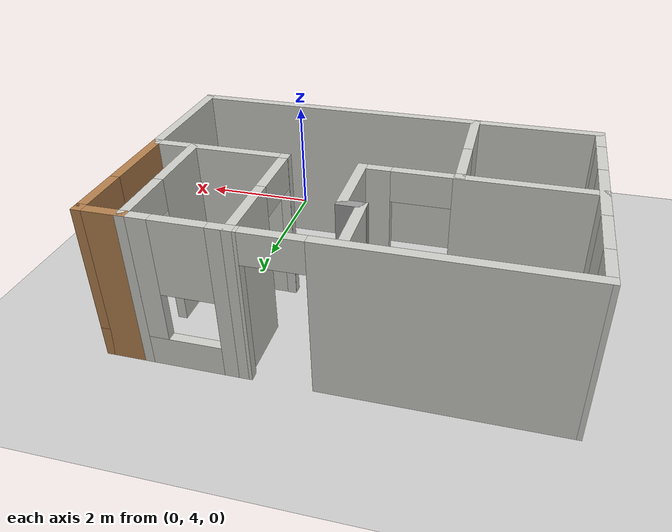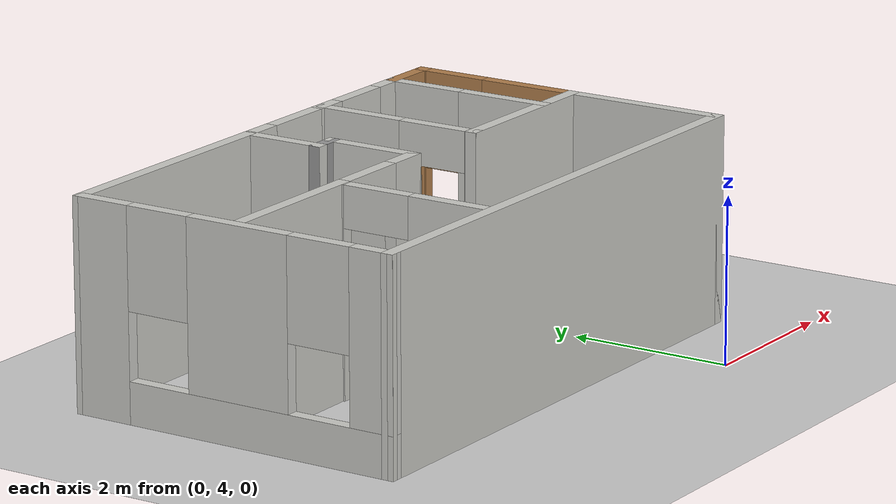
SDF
<?xml version="1.0" ?>
<sdf version="1.4">
  <world name="default">
    <include>
      <uri>model://ground_plane</uri>
    </include>
    <include>
      <uri>model://sun</uri>
    </include>
    <include>
      <uri>model://turtlebot_house</uri>
      <pose>-2.0 7.0 0 0 0 0</pose>
    </include>
  </world>
</sdf>

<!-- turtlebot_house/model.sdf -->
<sdf version='1.6'>
  <model name='turtlebot_house'>
    <pose frame=''>-0.010638 -0.005 0 0 -0 0</pose>
    <link name='Wall_0'>
      <collision name='Wall_0_Collision'>
        <geometry>
          <box>
            <size>6.875 0.15 2.5</size>
          </box>
        </geometry>
        <pose frame=''>0 0 1.25 0 -0 0</pose>
      </collision>
      <visual name='Wall_0_Visual'>
        <pose frame=''>0 0 1.25 0 -0 0</pose>
        <geometry>
          <box>
            <size>6.875 0.15 2.5</size>
          </box>
        </geometry>
        <material>
          <script>
            <uri>file://media/materials/scripts/gazebo.material</uri>
            <name>Gazebo/CeilingTiled</name>
          </script>
          <ambient>0.760784 0.662745 0.627451 1</ambient>
        </material>
        <meta>
          <layer>0</layer>
        </meta>
      </visual>
      <pose frame=''>0.000138 -2.03 0 0 -0 0</pose>
    </link>
    <link name='Wall_10'>
      <pose frame=''>1.99264 2.03 0 0 -0 0</pose>
      <visual name='Wall_10_Visual_0'>
        <pose frame=''>-0.630226 0 1.25 0 -0 0</pose>
        <geometry>
          <box>
            <size>0.369548 0.15 2.5</size>
          </box>
        </geometry>
        <material>
          <script>
            <uri>file://media/materials/scripts/gazebo.material</uri>
            <name>Gazebo/CeilingTiled</name>
          </script>
          <ambient>0.760784 0.662745 0.627451 1</ambient>
        </material>
        <meta>
          <layer>0</layer>
        </meta>
      </visual>
      <collision name='Wall_10_Collision_0'>
        <geometry>
          <box>
            <size>0.369548 0.15 2.5</size>
          </box>
        </geometry>
        <pose frame=''>-0.630226 0 1.25 0 -0 0</pose>
      </collision>
      <visual name='Wall_10_Visual_1'>
        <pose frame=''>0.184774 0 0.25 0 -0 0</pose>
        <geometry>
          <box>
            <size>1.26045 0.15 0.5</size>
          </box>
        </geometry>
        <material>
          <script>
            <uri>file://media/materials/scripts/gazebo.material</uri>
            <name>Gazebo/CeilingTiled</name>
          </script>
          <ambient>0.760784 0.662745 0.627451 1</ambient>
        </material>
        <meta>
          <layer>0</layer>
        </meta>
      </visual>
      <collision name='Wall_10_Collision_1'>
        <geometry>
          <box>
            <size>1.26045 0.15 0.5</size>
          </box>
        </geometry>
        <pose frame=''>0.184774 0 0.25 0 -0 0</pose>
      </collision>
      <visual name='Wall_10_Visual_2'>
        <pose frame=''>0.584774 0 1.5 0 -0 0</pose>
        <geometry>
          <box>
            <size>0.460452 0.15 2</size>
          </box>
        </geometry>
        <material>
          <script>
            <uri>file://media/materials/scripts/gazebo.material</uri>
            <name>Gazebo/CeilingTiled</name>
          </script>
          <ambient>0.760784 0.662745 0.627451 1</ambient>
        </material>
        <meta>
          <layer>0</layer>
        </meta>
      </visual>
      <collision name='Wall_10_Collision_2'>
        <geometry>
          <box>
            <size>0.460452 0.15 2</size>
          </box>
        </geometry>
        <pose frame=''>0.584774 0 1.5 0 -0 0</pose>
      </collision>
      <visual name='Wall_10_Visual_3'>
        <pose frame=''>-0.045452 0 1.9 0 -0 0</pose>
        <geometry>
          <box>
            <size>0.8 0.15 1.2</size>
          </box>
        </geometry>
        <material>
          <script>
            <uri>file://media/materials/scripts/gazebo.material</uri>
            <name>Gazebo/CeilingTiled</name>
          </script>
          <ambient>0.760784 0.662745 0.627451 1</ambient>
        </material>
        <meta>
          <layer>0</layer>
        </meta>
      </visual>
      <collision name='Wall_10_Collision_3'>
        <geometry>
          <box>
            <size>0.8 0.15 1.2</size>
          </box>
        </geometry>
        <pose frame=''>-0.045452 0 1.9 0 -0 0</pose>
      </collision>
    </link>
    <link name='Wall_12'>
      <pose frame=''>2.73264 0.98 0 0 -0 -1.5708</pose>
      <visual name='Wall_12_Visual_0'>
        <pose frame=''>-1.05277 0 1.25 0 -0 0</pose>
        <geometry>
          <box>
            <size>0.144466 0.15 2.5</size>
          </box>
        </geometry>
        <material>
          <script>
            <uri>file://media/materials/scripts/gazebo.material</uri>
            <name>Gazebo/CeilingTiled</name>
          </script>
          <ambient>0.760784 0.662745 0.627451 1</ambient>
        </material>
        <meta>
          <layer>0</layer>
        </meta>
      </visual>
      <collision name='Wall_12_Collision_0'>
        <geometry>
          <box>
            <size>0.144466 0.15 2.5</size>
          </box>
        </geometry>
        <pose frame=''>-1.05277 0 1.25 0 -0 0</pose>
      </collision>
      <visual name='Wall_12_Visual_1'>
        <pose frame=''>0.522233 0 1.25 0 -0 0</pose>
        <geometry>
          <box>
            <size>1.20553 0.15 2.5</size>
          </box>
        </geometry>
        <material>
          <script>
            <uri>file://media/materials/scripts/gazebo.material</uri>
            <name>Gazebo/CeilingTiled</name>
          </script>
          <ambient>0.760784 0.662745 0.627451 1</ambient>
        </material>
        <meta>
          <layer>0</layer>
        </meta>
      </visual>
      <collision name='Wall_12_Collision_1'>
        <geometry>
          <box>
            <size>1.20553 0.15 2.5</size>
          </box>
        </geometry>
        <pose frame=''>0.522233 0 1.25 0 -0 0</pose>
      </collision>
      <visual name='Wall_12_Visual_2'>
        <pose frame=''>-0.530534 0 2.25 0 -0 0</pose>
        <geometry>
          <box>
            <size>0.9 0.15 0.5</size>
          </box>
        </geometry>
        <material>
          <script>
            <uri>file://media/materials/scripts/gazebo.material</uri>
            <name>Gazebo/CeilingTiled</name>
          </script>
          <ambient>0.760784 0.662745 0.627451 1</ambient>
        </material>
        <meta>
          <layer>0</layer>
        </meta>
      </visual>
      <collision name='Wall_12_Collision_2'>
        <geometry>
          <box>
            <size>0.9 0.15 0.5</size>
          </box>
        </geometry>
        <pose frame=''>-0.530534 0 2.25 0 -0 0</pose>
      </collision>
    </link>
    <link name='Wall_14'>
      <pose frame=''>-1.04736 2.03 0 0 -0 3.14159</pose>
      <visual name='Wall_14_Visual_0'>
        <pose frame=''>-2.27477 0 1.25 0 -0 0</pose>
        <geometry>
          <box>
            <size>0.200452 0.15 2.5</size>
          </box>
        </geometry>
        <material>
          <script>
            <uri>file://media/materials/scripts/gazebo.material</uri>
            <name>Gazebo/CeilingTiled</name>
          </script>
          <ambient>0.760784 0.662745 0.627451 1</ambient>
        </material>
        <meta>
          <layer>0</layer>
        </meta>
      </visual>
      <collision name='Wall_14_Collision_0'>
        <geometry>
          <box>
            <size>0.200452 0.15 2.5</size>
          </box>
        </geometry>
        <pose frame=''>-2.27477 0 1.25 0 -0 0</pose>
      </collision>
      <visual name='Wall_14_Visual_1'>
        <pose frame=''>0.550226 0 1.25 0 -0 0</pose>
        <geometry>
          <box>
            <size>3.64955 0.15 2.5</size>
          </box>
        </geometry>
        <material>
          <script>
            <uri>file://media/materials/scripts/gazebo.material</uri>
            <name>Gazebo/CeilingTiled</name>
          </script>
          <ambient>0.760784 0.662745 0.627451 1</ambient>
        </material>
        <meta>
          <layer>0</layer>
        </meta>
      </visual>
      <collision name='Wall_14_Collision_1'>
        <geometry>
          <box>
            <size>3.64955 0.15 2.5</size>
          </box>
        </geometry>
        <pose frame=''>0.550226 0 1.25 0 -0 0</pose>
      </collision>
      <visual name='Wall_14_Visual_2'>
        <pose frame=''>-1.72455 0 2.25 0 -0 0</pose>
        <geometry>
          <box>
            <size>0.9 0.15 0.5</size>
          </box>
        </geometry>
        <material>
          <script>
            <uri>file://media/materials/scripts/gazebo.material</uri>
            <name>Gazebo/CeilingTiled</name>
          </script>
          <ambient>0.760784 0.662745 0.627451 1</ambient>
        </material>
        <meta>
          <layer>0</layer>
        </meta>
      </visual>
      <collision name='Wall_14_Collision_2'>
        <geometry>
          <box>
            <size>0.9 0.15 0.5</size>
          </box>
        </geometry>
        <pose frame=''>-1.72455 0 2.25 0 -0 0</pose>
      </collision>
    </link>
    <link name='Wall_15'>
      <pose frame=''>-3.35486 0 0 0 -0 -1.57449</pose>
      <visual name='Wall_15_Visual_0'>
        <pose frame=''>-1.73781 0 1.25 0 -0 0</pose>
        <geometry>
          <box>
            <size>0.734405 0.15 2.5</size>
          </box>
        </geometry>
        <material>
          <script>
            <uri>file://media/materials/scripts/gazebo.material</uri>
            <name>Gazebo/CeilingTiled</name>
          </script>
          <ambient>0.760784 0.662745 0.627451 1</ambient>
        </material>
        <meta>
          <layer>0</layer>
        </meta>
      </visual>
      <collision name='Wall_15_Collision_0'>
        <geometry>
          <box>
            <size>0.734405 0.15 2.5</size>
          </box>
        </geometry>
        <pose frame=''>-1.73781 0 1.25 0 -0 0</pose>
      </collision>
      <visual name='Wall_15_Visual_1'>
        <pose frame=''>0.367202 0 0.25 0 -0 0</pose>
        <geometry>
          <box>
            <size>3.47562 0.15 0.5</size>
          </box>
        </geometry>
        <material>
          <script>
            <uri>file://media/materials/scripts/gazebo.material</uri>
            <name>Gazebo/CeilingTiled</name>
          </script>
          <ambient>0.760784 0.662745 0.627451 1</ambient>
        </material>
        <meta>
          <layer>0</layer>
        </meta>
      </visual>
      <collision name='Wall_15_Collision_1'>
        <geometry>
          <box>
            <size>3.47562 0.15 0.5</size>
          </box>
        </geometry>
        <pose frame=''>0.367202 0 0.25 0 -0 0</pose>
      </collision>
      <visual name='Wall_15_Visual_2'>
        <pose frame=''>0.088922 0 1.5 0 -0 0</pose>
        <geometry>
          <box>
            <size>1.31906 0.15 2</size>
          </box>
        </geometry>
        <material>
          <script>
            <uri>file://media/materials/scripts/gazebo.material</uri>
            <name>Gazebo/CeilingTiled</name>
          </script>
          <ambient>0.760784 0.662745 0.627451 1</ambient>
        </material>
        <meta>
          <layer>0</layer>
        </meta>
      </visual>
      <collision name='Wall_15_Collision_2'>
        <geometry>
          <box>
            <size>1.31906 0.15 2</size>
          </box>
        </geometry>
        <pose frame=''>0.088922 0 1.5 0 -0 0</pose>
      </collision>
      <visual name='Wall_15_Visual_3'>
        <pose frame=''>1.82673 0 1.5 0 -0 0</pose>
        <geometry>
          <box>
            <size>0.556561 0.15 2</size>
          </box>
        </geometry>
        <material>
          <script>
            <uri>file://media/materials/scripts/gazebo.material</uri>
            <name>Gazebo/CeilingTiled</name>
          </script>
          <ambient>0.760784 0.662745 0.627451 1</ambient>
        </material>
        <meta>
          <layer>0</layer>
        </meta>
      </visual>
      <collision name='Wall_15_Collision_3'>
        <geometry>
          <box>
            <size>0.556561 0.15 2</size>
          </box>
        </geometry>
        <pose frame=''>1.82673 0 1.5 0 -0 0</pose>
      </collision>
      <visual name='Wall_15_Visual_4'>
        <pose frame=''>-0.970609 0 1.9 0 -0 0</pose>
        <geometry>
          <box>
            <size>0.8 0.15 1.2</size>
          </box>
        </geometry>
        <material>
          <script>
            <uri>file://media/materials/scripts/gazebo.material</uri>
            <name>Gazebo/CeilingTiled</name>
          </script>
          <ambient>0.760784 0.662745 0.627451 1</ambient>
        </material>
        <meta>
          <layer>0</layer>
        </meta>
      </visual>
      <collision name='Wall_15_Collision_4'>
        <geometry>
          <box>
            <size>0.8 0.15 1.2</size>
          </box>
        </geometry>
        <pose frame=''>-0.970609 0 1.9 0 -0 0</pose>
      </collision>
      <visual name='Wall_15_Visual_5'>
        <pose frame=''>1.14845 0 1.9 0 -0 0</pose>
        <geometry>
          <box>
            <size>0.8 0.15 1.2</size>
          </box>
        </geometry>
        <material>
          <script>
            <uri>file://media/materials/scripts/gazebo.material</uri>
            <name>Gazebo/CeilingTiled</name>
          </script>
          <ambient>0.760784 0.662745 0.627451 1</ambient>
        </material>
        <meta>
          <layer>0</layer>
        </meta>
      </visual>
      <collision name='Wall_15_Collision_5'>
        <geometry>
          <box>
            <size>0.8 0.15 1.2</size>
          </box>
        </geometry>
        <pose frame=''>1.14845 0 1.9 0 -0 0</pose>
      </collision>
    </link>
    <link name='Wall_17'>
      <pose frame=''>-1.65236 -0.029 0 0 -0 0</pose>
      <visual name='Wall_17_Visual_0'>
        <pose frame=''>-0.7075 0 1.25 0 -0 0</pose>
        <geometry>
          <box>
            <size>2.135 0.15 2.5</size>
          </box>
        </geometry>
        <material>
          <script>
            <uri>file://media/materials/scripts/gazebo.material</uri>
            <name>Gazebo/CeilingTiled</name>
          </script>
          <ambient>0.760784 0.662745 0.627451 1</ambient>
        </material>
        <meta>
          <layer>0</layer>
        </meta>
      </visual>
      <collision name='Wall_17_Collision_0'>
        <geometry>
          <box>
            <size>2.135 0.15 2.5</size>
          </box>
        </geometry>
        <pose frame=''>-0.7075 0 1.25 0 -0 0</pose>
      </collision>
      <visual name='Wall_17_Visual_1'>
        <pose frame=''>1.5175 0 1.25 0 -0 0</pose>
        <geometry>
          <box>
            <size>0.515 0.15 2.5</size>
          </box>
        </geometry>
        <material>
          <script>
            <uri>file://media/materials/scripts/gazebo.material</uri>
            <name>Gazebo/CeilingTiled</name>
          </script>
          <ambient>0.760784 0.662745 0.627451 1</ambient>
        </material>
        <meta>
          <layer>0</layer>
        </meta>
      </visual>
      <collision name='Wall_17_Collision_1'>
        <geometry>
          <box>
            <size>0.515 0.15 2.5</size>
          </box>
        </geometry>
        <pose frame=''>1.5175 0 1.25 0 -0 0</pose>
      </collision>
      <visual name='Wall_17_Visual_2'>
        <pose frame=''>0.81 0 2.25 0 -0 0</pose>
        <geometry>
          <box>
            <size>0.9 0.15 0.5</size>
          </box>
        </geometry>
        <material>
          <script>
            <uri>file://media/materials/scripts/gazebo.material</uri>
            <name>Gazebo/CeilingTiled</name>
          </script>
          <ambient>0.760784 0.662745 0.627451 1</ambient>
        </material>
        <meta>
          <layer>0</layer>
        </meta>
      </visual>
      <collision name='Wall_17_Collision_2'>
        <geometry>
          <box>
            <size>0.9 0.15 0.5</size>
          </box>
        </geometry>
        <pose frame=''>0.81 0 2.25 0 -0 0</pose>
      </collision>
    </link>
    <link name='Wall_19'>
      <collision name='Wall_19_Collision'>
        <geometry>
          <box>
            <size>1.25 0.15 2.5</size>
          </box>
        </geometry>
        <pose frame=''>0 0 1.25 0 -0 0</pose>
      </collision>
      <visual name='Wall_19_Visual'>
        <pose frame=''>0 0 1.25 0 -0 0</pose>
        <geometry>
          <box>
            <size>1.25 0.15 2.5</size>
          </box>
        </geometry>
        <material>
          <script>
            <uri>file://media/materials/scripts/gazebo.material</uri>
            <name>Gazebo/CeilingTiled</name>
          </script>
          <ambient>0.760784 0.662745 0.627451 1</ambient>
        </material>
        <meta>
          <layer>0</layer>
        </meta>
      </visual>
      <pose frame=''>0.047638 0.521 0 0 -0 1.5708</pose>
    </link>
    <link name='Wall_20'>
      <collision name='Wall_20_Collision'>
        <geometry>
          <box>
            <size>0.425 0.15 2.5</size>
          </box>
        </geometry>
        <pose frame=''>0 0 1.25 0 -0 0</pose>
      </collision>
      <visual name='Wall_20_Visual'>
        <pose frame=''>0 0 1.25 0 -0 0</pose>
        <geometry>
          <box>
            <size>0.425 0.15 2.5</size>
          </box>
        </geometry>
        <material>
          <script>
            <uri>file://media/materials/scripts/gazebo.material</uri>
            <name>Gazebo/Grey</name>
          </script>
          <ambient>1 1 1 1</ambient>
        </material>
        <meta>
          <layer>0</layer>
        </meta>
      </visual>
      <pose frame=''>-0.089862 1.071 0 0 -0 3.14159</pose>
    </link>
    <link name='Wall_24'>
      <collision name='Wall_24_Collision'>
        <geometry>
          <box>
            <size>1.1 0.15 2.5</size>
          </box>
        </geometry>
        <pose frame=''>0 0 1.25 0 -0 0</pose>
      </collision>
      <visual name='Wall_24_Visual'>
        <pose frame=''>0 0 1.25 0 -0 0</pose>
        <geometry>
          <box>
            <size>1.1 0.15 2.5</size>
          </box>
        </geometry>
        <material>
          <script>
            <uri>file://media/materials/scripts/gazebo.material</uri>
            <name>Gazebo/CeilingTiled</name>
          </script>
          <ambient>0.760784 0.662745 0.627451 1</ambient>
        </material>
        <meta>
          <layer>0</layer>
        </meta>
      </visual>
      <pose frame=''>-0.227362 1.546 0 0 -0 1.5708</pose>
    </link>
    <link name='Wall_28'>
      <pose frame=''>-1.38236 -1.034 0 0 -0 1.5708</pose>
      <visual name='Wall_28_Visual_0'>
        <pose frame=''>-0.495 0 1.25 0 -0 0</pose>
        <geometry>
          <box>
            <size>1.11 0.15 2.5</size>
          </box>
        </geometry>
        <material>
          <script>
            <uri>file://media/materials/scripts/gazebo.material</uri>
            <name>Gazebo/CeilingTiled</name>
          </script>
          <ambient>0.760784 0.662745 0.627451 1</ambient>
        </material>
        <meta>
          <layer>0</layer>
        </meta>
      </visual>
      <collision name='Wall_28_Collision_0'>
        <geometry>
          <box>
            <size>1.11 0.15 2.5</size>
          </box>
        </geometry>
        <pose frame=''>-0.495 0 1.25 0 -0 0</pose>
      </collision>
      <visual name='Wall_28_Visual_1'>
        <pose frame=''>0.98 0 1.25 0 -0 0</pose>
        <geometry>
          <box>
            <size>0.14 0.15 2.5</size>
          </box>
        </geometry>
        <material>
          <script>
            <uri>file://media/materials/scripts/gazebo.material</uri>
            <name>Gazebo/CeilingTiled</name>
          </script>
          <ambient>0.760784 0.662745 0.627451 1</ambient>
        </material>
        <meta>
          <layer>0</layer>
        </meta>
      </visual>
      <collision name='Wall_28_Collision_1'>
        <geometry>
          <box>
            <size>0.14 0.15 2.5</size>
          </box>
        </geometry>
        <pose frame=''>0.98 0 1.25 0 -0 0</pose>
      </collision>
      <visual name='Wall_28_Visual_2'>
        <pose frame=''>0.485 0 2.25 0 -0 0</pose>
        <geometry>
          <box>
            <size>0.85 0.15 0.5</size>
          </box>
        </geometry>
        <material>
          <script>
            <uri>file://media/materials/scripts/gazebo.material</uri>
            <name>Gazebo/CeilingTiled</name>
          </script>
          <ambient>0.760784 0.662745 0.627451 1</ambient>
        </material>
        <meta>
          <layer>0</layer>
        </meta>
      </visual>
      <collision name='Wall_28_Collision_2'>
        <geometry>
          <box>
            <size>0.85 0.15 0.5</size>
          </box>
        </geometry>
        <pose frame=''>0.485 0 2.25 0 -0 0</pose>
      </collision>
    </link>
    <link name='Wall_30'>
      <pose frame=''>3.36264 0.98 0 0 -0 1.5708</pose>
      <visual name='Wall_30_Visual_0'>
        <pose frame=''>-0.482233 0 1.25 0 -0 0</pose>
        <geometry>
          <box>
            <size>1.28553 0.15 2.5</size>
          </box>
        </geometry>
        <material>
          <script>
            <uri>file://media/materials/scripts/gazebo.material</uri>
            <name>Gazebo/Wood</name>
          </script>
          <ambient>1 1 1 1</ambient>
        </material>
        <meta>
          <layer>0</layer>
        </meta>
      </visual>
      <collision name='Wall_30_Collision_0'>
        <geometry>
          <box>
            <size>1.28553 0.15 2.5</size>
          </box>
        </geometry>
        <pose frame=''>-0.482233 0 1.25 0 -0 0</pose>
      </collision>
      <visual name='Wall_30_Visual_1'>
        <pose frame=''>0.642767 0 0.25 0 -0 0</pose>
        <geometry>
          <box>
            <size>0.964466 0.15 0.5</size>
          </box>
        </geometry>
        <material>
          <script>
            <uri>file://media/materials/scripts/gazebo.material</uri>
            <name>Gazebo/Wood</name>
          </script>
          <ambient>1 1 1 1</ambient>
        </material>
        <meta>
          <layer>0</layer>
        </meta>
      </visual>
      <collision name='Wall_30_Collision_1'>
        <geometry>
          <box>
            <size>0.964466 0.15 0.5</size>
          </box>
        </geometry>
        <pose frame=''>0.642767 0 0.25 0 -0 0</pose>
      </collision>
      <visual name='Wall_30_Visual_2'>
        <pose frame=''>1.04277 0 1.5 0 -0 0</pose>
        <geometry>
          <box>
            <size>0.164466 0.15 2</size>
          </box>
        </geometry>
        <material>
          <script>
            <uri>file://media/materials/scripts/gazebo.material</uri>
            <name>Gazebo/Wood</name>
          </script>
          <ambient>1 1 1 1</ambient>
        </material>
        <meta>
          <layer>0</layer>
        </meta>
      </visual>
      <collision name='Wall_30_Collision_2'>
        <geometry>
          <box>
            <size>0.164466 0.15 2</size>
          </box>
        </geometry>
        <pose frame=''>1.04277 0 1.5 0 -0 0</pose>
      </collision>
      <visual name='Wall_30_Visual_3'>
        <pose frame=''>0.560534 0 1.9 0 -0 0</pose>
        <geometry>
          <box>
            <size>0.8 0.15 1.2</size>
          </box>
        </geometry>
        <material>
          <script>
            <uri>file://media/materials/scripts/gazebo.material</uri>
            <name>Gazebo/Wood</name>
          </script>
          <ambient>1 1 1 1</ambient>
        </material>
        <meta>
          <layer>0</layer>
        </meta>
      </visual>
      <collision name='Wall_30_Collision_3'>
        <geometry>
          <box>
            <size>0.8 0.15 1.2</size>
          </box>
        </geometry>
        <pose frame=''>0.560534 0 1.9 0 -0 0</pose>
      </collision>
    </link>
    <link name='Wall_48'>
      <collision name='Wall_48_Collision'>
        <geometry>
          <box>
            <size>0.78 0.15 2.5</size>
          </box>
        </geometry>
        <pose frame=''>0 0 1.25 0 -0 0</pose>
      </collision>
      <visual name='Wall_48_Visual'>
        <pose frame=''>0 0 1.25 0 -0 0</pose>
        <geometry>
          <box>
            <size>0.78 0.15 2.5</size>
          </box>
        </geometry>
        <material>
          <script>
            <uri>file://media/materials/scripts/gazebo.material</uri>
            <name>Gazebo/Wood</name>
          </script>
          <ambient>1 1 1 1</ambient>
        </material>
        <meta>
          <layer>0</layer>
        </meta>
      </visual>
      <pose frame=''>3.04764 2.03 0 0 -0 3.14159</pose>
    </link>
    <link name='Wall_5'>
      <collision name='Wall_5_Collision'>
        <geometry>
          <box>
            <size>2.11 0.15 2.5</size>
          </box>
        </geometry>
        <pose frame=''>0 0 1.25 0 -0 0</pose>
      </collision>
      <visual name='Wall_5_Visual'>
        <pose frame=''>0 0 1.25 0 -0 0</pose>
        <geometry>
          <box>
            <size>2.11 0.15 2.5</size>
          </box>
        </geometry>
        <material>
          <script>
            <uri>file://media/materials/scripts/gazebo.material</uri>
            <name>Gazebo/CeilingTiled</name>
          </script>
          <ambient>0.760784 0.662745 0.627451 1</ambient>
        </material>
        <meta>
          <layer>0</layer>
        </meta>
      </visual>
      <pose frame=''>3.36264 -1.05 0 0 -0 1.5708</pose>
    </link>
    <link name='Wall_7'>
      <collision name='Wall_7_Collision'>
        <geometry>
          <box>
            <size>2.26 0.15 2.5</size>
          </box>
        </geometry>
        <pose frame=''>0 0 1.25 0 -0 0</pose>
      </collision>
      <visual name='Wall_7_Visual'>
        <pose frame=''>0 0 1.25 0 -0 0</pose>
        <geometry>
          <box>
            <size>2.26 0.15 2.5</size>
          </box>
        </geometry>
        <material>
          <script>
            <uri>file://media/materials/scripts/gazebo.material</uri>
            <name>Gazebo/CeilingTiled</name>
          </script>
          <ambient>0.760784 0.662745 0.627451 1</ambient>
        </material>
        <meta>
          <layer>0</layer>
        </meta>
      </visual>
      <pose frame=''>2.30764 -0.07 0 0 -0 3.14159</pose>
    </link>
    <link name='Wall_9'>
      <pose frame=''>1.25264 0.98 0 0 -0 1.5708</pose>
      <visual name='Wall_9_Visual_0'>
        <pose frame=''>-1.04723 0 1.25 0 -0 0</pose>
        <geometry>
          <box>
            <size>0.155534 0.15 2.5</size>
          </box>
        </geometry>
        <material>
          <script>
            <uri>file://media/materials/scripts/gazebo.material</uri>
            <name>Gazebo/CeilingTiled</name>
          </script>
          <ambient>0.760784 0.662745 0.627451 1</ambient>
        </material>
        <meta>
          <layer>0</layer>
        </meta>
      </visual>
      <collision name='Wall_9_Collision_0'>
        <geometry>
          <box>
            <size>0.155534 0.15 2.5</size>
          </box>
        </geometry>
        <pose frame=''>-1.04723 0 1.25 0 -0 0</pose>
      </collision>
      <visual name='Wall_9_Visual_1'>
        <pose frame=''>0.527767 0 1.25 0 -0 0</pose>
        <geometry>
          <box>
            <size>1.19447 0.15 2.5</size>
          </box>
        </geometry>
        <material>
          <script>
            <uri>file://media/materials/scripts/gazebo.material</uri>
            <name>Gazebo/CeilingTiled</name>
          </script>
          <ambient>0.760784 0.662745 0.627451 1</ambient>
        </material>
        <meta>
          <layer>0</layer>
        </meta>
      </visual>
      <collision name='Wall_9_Collision_1'>
        <geometry>
          <box>
            <size>1.19447 0.15 2.5</size>
          </box>
        </geometry>
        <pose frame=''>0.527767 0 1.25 0 -0 0</pose>
      </collision>
      <visual name='Wall_9_Visual_2'>
        <pose frame=''>-0.519466 0 2.25 0 -0 0</pose>
        <geometry>
          <box>
            <size>0.9 0.15 0.5</size>
          </box>
        </geometry>
        <material>
          <script>
            <uri>file://media/materials/scripts/gazebo.material</uri>
            <name>Gazebo/CeilingTiled</name>
          </script>
          <ambient>0.760784 0.662745 0.627451 1</ambient>
        </material>
        <meta>
          <layer>0</layer>
        </meta>
      </visual>
      <collision name='Wall_9_Collision_2'>
        <geometry>
          <box>
            <size>0.9 0.15 0.5</size>
          </box>
        </geometry>
        <pose frame=''>-0.519466 0 2.25 0 -0 0</pose>
      </collision>
    </link>
    <static>1</static>
  </model>
</sdf>
